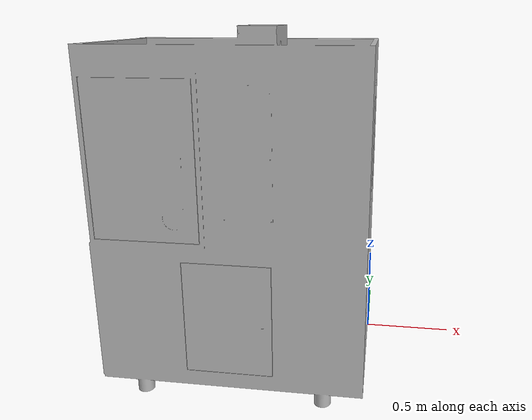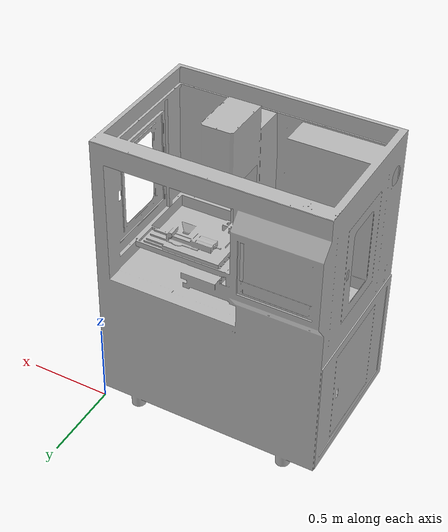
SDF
<?xml version="1.0"?>
<sdf version="1.9">
  <model name="my_mesh">
    <static>true</static>
    <link name="link">
      <visual name="visual">
        <geometry>
          <mesh>
            <uri>/home/robot_llam/BKyoon/working/chipblowing/arm_ws/src/scripts/meshes/VMC-300-l.obj</uri>
            <scale>0.001 0.001 0.001</scale>
          </mesh>
        </geometry>
      </visual>
      <collision name="collision">
        <geometry>
          <mesh>
            <uri>/home/robot_llam/BKyoon/working/chipblowing/arm_ws/src/scripts/meshes/VMC-300-l.obj</uri>
            <scale>0.001 0.001 0.001</scale>
          </mesh>
        </geometry>
      </collision>

      <sensor name="contact_sensor" type="contact">
        <contact>
          <collision>link_collision</collision>
        </contact>
        <update_rate>100</update_rate>
        <plugin name="gz::sim::systems::Contact" filename="libgz-sim-contact-system.so"/>
      </sensor>
    </link>
  </model>
</sdf>
